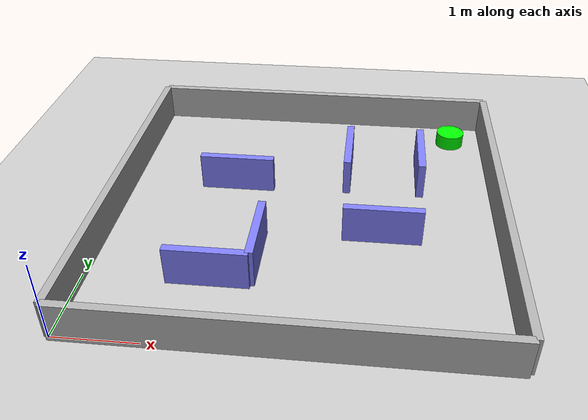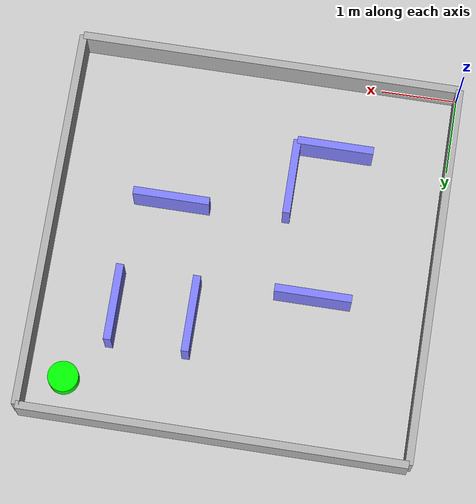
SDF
<?xml version="1.0" ?>
<sdf version="1.6">
  <world name="maze_world">
    <plugin name="gazebo_ros_state" filename="libgazebo_ros_state.so">
      <update_rate>10.0</update_rate>
    </plugin>
    <!-- Physics -->
    <physics type="ode">
      <max_step_size>0.001</max_step_size>
      <real_time_factor>1</real_time_factor>
      <real_time_update_rate>1000</real_time_update_rate>
    </physics>

    <!-- Lighting -->
    <include>
      <uri>model://sun</uri>
    </include>

    <!-- Ground Plane -->
    <model name="ground_plane">
      <static>true</static>
      <link name="link">
        <collision name="collision">
          <geometry>
            <plane>
              <normal>0 0 1</normal>
              <size>100 100</size>
            </plane>
          </geometry>
        </collision>
        <visual name="visual">
          <geometry>
            <plane>
              <normal>0 0 1</normal>
              <size>100 100</size>
            </plane>
          </geometry>
          <material>
            <ambient>0.8 0.8 0.8 1</ambient>
            <diffuse>0.8 0.8 0.8 1</diffuse>
          </material>
        </visual>
      </link>
    </model>

    <!-- 5x5 Maze Walls (each cell is 1m x 1m) -->
    <!-- Outer boundary walls -->

    <!-- Bottom wall -->
    <model name="wall_bottom">
      <static>true</static>
      <pose>2.5 0 0.25 0 0 0</pose>
      <link name="link">
        <collision name="collision">
          <geometry>
            <box>
              <size>5 0.1 0.5</size>
            </box>
          </geometry>
        </collision>
        <visual name="visual">
          <geometry>
            <box>
              <size>5 0.1 0.5</size>
            </box>
          </geometry>
          <material>
            <ambient>0.5 0.5 0.5 1</ambient>
            <diffuse>0.7 0.7 0.7 1</diffuse>
          </material>
        </visual>
      </link>
    </model>

    <!-- Top wall -->
    <model name="wall_top">
      <static>true</static>
      <pose>2.5 5 0.25 0 0 0</pose>
      <link name="link">
        <collision name="collision">
          <geometry>
            <box>
              <size>5 0.1 0.5</size>
            </box>
          </geometry>
        </collision>
        <visual name="visual">
          <geometry>
            <box>
              <size>5 0.1 0.5</size>
            </box>
          </geometry>
          <material>
            <ambient>0.5 0.5 0.5 1</ambient>
            <diffuse>0.7 0.7 0.7 1</diffuse>
          </material>
        </visual>
      </link>
    </model>

    <!-- Left wall -->
    <model name="wall_left">
      <static>true</static>
      <pose>0 2.5 0.25 0 0 0</pose>
      <link name="link">
        <collision name="collision">
          <geometry>
            <box>
              <size>0.1 5 0.5</size>
            </box>
          </geometry>
        </collision>
        <visual name="visual">
          <geometry>
            <box>
              <size>0.1 5 0.5</size>
            </box>
          </geometry>
          <material>
            <ambient>0.5 0.5 0.5 1</ambient>
            <diffuse>0.7 0.7 0.7 1</diffuse>
          </material>
        </visual>
      </link>
    </model>

    <!-- Right wall -->
    <model name="wall_right">
      <static>true</static>
      <pose>5 2.5 0.25 0 0 0</pose>
      <link name="link">
        <collision name="collision">
          <geometry>
            <box>
              <size>0.1 5 0.5</size>
            </box>
          </geometry>
        </collision>
        <visual name="visual">
          <geometry>
            <box>
              <size>0.1 5 0.5</size>
            </box>
          </geometry>
          <material>
            <ambient>0.5 0.5 0.5 1</ambient>
            <diffuse>0.7 0.7 0.7 1</diffuse>
          </material>
        </visual>
      </link>
    </model>

    <!-- Internal maze walls - creating a simple maze pattern -->

    <!-- Horizontal wall 1 -->
    <model name="wall_h1">
      <static>true</static>
      <pose>1.5 1 0.25 0 0 0</pose>
      <link name="link">
        <collision name="collision">
          <geometry>
            <box>
              <size>1 0.1 0.5</size>
            </box>
          </geometry>
        </collision>
        <visual name="visual">
          <geometry>
            <box>
              <size>1 0.1 0.5</size>
            </box>
          </geometry>
          <material>
            <ambient>0.3 0.3 0.8 1</ambient>
            <diffuse>0.5 0.5 1 1</diffuse>
          </material>
        </visual>
      </link>
    </model>

    <!-- Vertical wall 1 -->
    <model name="wall_v1">
      <static>true</static>
      <pose>2 1.5 0.25 0 0 0</pose>
      <link name="link">
        <collision name="collision">
          <geometry>
            <box>
              <size>0.1 1 0.5</size>
            </box>
          </geometry>
        </collision>
        <visual name="visual">
          <geometry>
            <box>
              <size>0.1 1 0.5</size>
            </box>
          </geometry>
          <material>
            <ambient>0.3 0.3 0.8 1</ambient>
            <diffuse>0.5 0.5 1 1</diffuse>
          </material>
        </visual>
      </link>
    </model>

    <!-- Horizontal wall 2 -->
    <model name="wall_h2">
      <static>true</static>
      <pose>3.5 2 0.25 0 0 0</pose>
      <link name="link">
        <collision name="collision">
          <geometry>
            <box>
              <size>1 0.1 0.5</size>
            </box>
          </geometry>
        </collision>
        <visual name="visual">
          <geometry>
            <box>
              <size>1 0.1 0.5</size>
            </box>
          </geometry>
          <material>
            <ambient>0.3 0.3 0.8 1</ambient>
            <diffuse>0.5 0.5 1 1</diffuse>
          </material>
        </visual>
      </link>
    </model>

    <!-- Vertical wall 2 -->
    <model name="wall_v2">
      <static>true</static>
      <pose>3 3.5 0.25 0 0 0</pose>
      <link name="link">
        <collision name="collision">
          <geometry>
            <box>
              <size>0.1 1 0.5</size>
            </box>
          </geometry>
        </collision>
        <visual name="visual">
          <geometry>
            <box>
              <size>0.1 1 0.5</size>
            </box>
          </geometry>
          <material>
            <ambient>0.3 0.3 0.8 1</ambient>
            <diffuse>0.5 0.5 1 1</diffuse>
          </material>
        </visual>
      </link>
    </model>

    <!-- Horizontal wall 3 -->
    <model name="wall_h3">
      <static>true</static>
      <pose>1.5 3 0.25 0 0 0</pose>
      <link name="link">
        <collision name="collision">
          <geometry>
            <box>
              <size>1 0.1 0.5</size>
            </box>
          </geometry>
        </collision>
        <visual name="visual">
          <geometry>
            <box>
              <size>1 0.1 0.5</size>
            </box>
          </geometry>
          <material>
            <ambient>0.3 0.3 0.8 1</ambient>
            <diffuse>0.5 0.5 1 1</diffuse>
          </material>
        </visual>
      </link>
    </model>

    <!-- Vertical wall 3 -->
    <model name="wall_v3">
      <static>true</static>
      <pose>4 3.5 0.25 0 0 0</pose>
      <link name="link">
        <collision name="collision">
          <geometry>
            <box>
              <size>0.1 1 0.5</size>
            </box>
          </geometry>
        </collision>
        <visual name="visual">
          <geometry>
            <box>
              <size>0.1 1 0.5</size>
            </box>
          </geometry>
          <material>
            <ambient>0.3 0.3 0.8 1</ambient>
            <diffuse>0.5 0.5 1 1</diffuse>
          </material>
        </visual>
      </link>
    </model>

    <!-- Goal marker (green cylinder) -->
    <model name="goal">
      <static>true</static>
      <pose>4.5 4.5 0.1 0 0 0</pose>
      <link name="link">
        <visual name="visual">
          <geometry>
            <cylinder>
              <radius>0.2</radius>
              <length>0.2</length>
            </cylinder>
          </geometry>
          <material>
            <ambient>0 1 0 1</ambient>
            <diffuse>0 1 0 1</diffuse>
          </material>
        </visual>
      </link>
    </model>

  </world>
</sdf>
